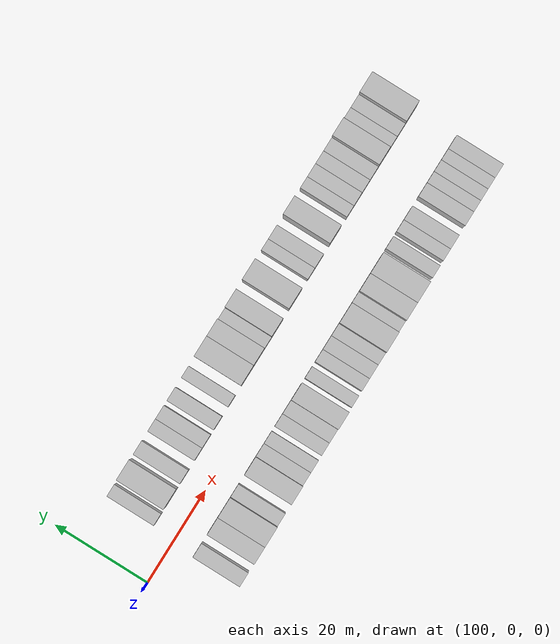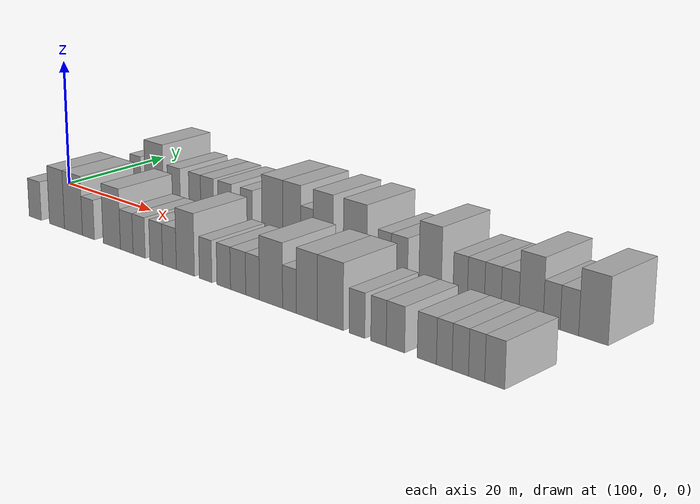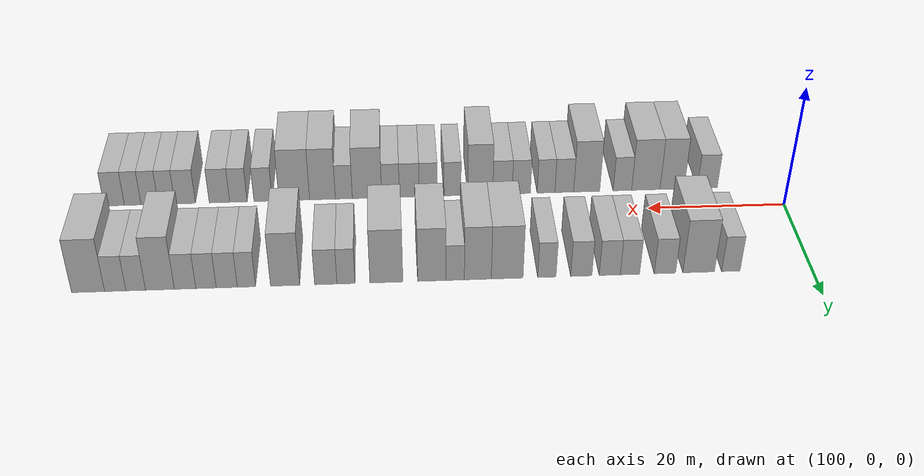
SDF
<sdf version="1.6">
 <world name="default">
  <model name="building_26">
   <static>1</static>
   <pose>111.1577 9.5000 0 0.000000 0.000000 1.570796</pose>
   <link name="link">
    <pose>0 0 3.00 0 0 0</pose>
    <collision name="collision"><geometry><box><size>10.0000 2.5390 6.0000</size></box></geometry></collision>
    <visual name="visual">
     <cast_shadows>0</cast_shadows>
     <geometry><box><size>10.0000 2.5390 6.0000</size></box></geometry>
     <material>
      <script>
       <uri>model://HANNAS_wall/materials/scripts</uri>
       <uri>model://HANNAS_wall/materials/textures</uri>
       <name>vrc/HANNAS_wall</name>
      </script>
     </material>
    </visual>
   </link>
  </model>
  <model name="building_27">
   <static>1</static>
   <pose>115.5979 9.5000 0 0.000000 0.000000 1.570796</pose>
   <link name="link">
    <pose>0 0 4.50 0 0 0</pose>
    <collision name="collision"><geometry><box><size>10.0000 4.3414 9.0000</size></box></geometry></collision>
    <visual name="visual">
     <cast_shadows>0</cast_shadows>
     <geometry><box><size>10.0000 4.3414 9.0000</size></box></geometry>
     <material>
      <script>
       <uri>model://HANNAS_wall/materials/scripts</uri>
       <uri>model://HANNAS_wall/materials/textures</uri>
       <name>vrc/HANNAS_wall</name>
      </script>
     </material>
    </visual>
   </link>
  </model>
  <model name="building_28">
   <static>1</static>
   <pose>120.2355 9.5000 0 0.000000 0.000000 1.570796</pose>
   <link name="link">
    <pose>0 0 3.00 0 0 0</pose>
    <collision name="collision"><geometry><box><size>10.0000 2.9337 6.0000</size></box></geometry></collision>
    <visual name="visual">
     <cast_shadows>0</cast_shadows>
     <geometry><box><size>10.0000 2.9337 6.0000</size></box></geometry>
     <material>
      <script>
       <uri>model://HANNAS_wall/materials/scripts</uri>
       <uri>model://HANNAS_wall/materials/textures</uri>
       <name>vrc/HANNAS_wall</name>
      </script>
     </material>
    </visual>
   </link>
  </model>
  <model name="building_29">
   <static>1</static>
   <pose>125.0300 9.5000 0 0.000000 0.000000 1.570796</pose>
   <link name="link">
    <pose>0 0 3.00 0 0 0</pose>
    <collision name="collision"><geometry><box><size>10.0000 2.6554 6.0000</size></box></geometry></collision>
    <visual name="visual">
     <cast_shadows>0</cast_shadows>
     <geometry><box><size>10.0000 2.6554 6.0000</size></box></geometry>
     <material>
      <script>
       <uri>model://HANNAS_wall/materials/scripts</uri>
       <uri>model://HANNAS_wall/materials/textures</uri>
       <name>vrc/HANNAS_wall</name>
      </script>
     </material>
    </visual>
   </link>
  </model>
  <model name="building_30">
   <static>1</static>
   <pose>127.7950 9.5000 0 0.000000 0.000000 1.570796</pose>
   <link name="link">
    <pose>0 0 3.00 0 0 0</pose>
    <collision name="collision"><geometry><box><size>10.0000 2.8746 6.0000</size></box></geometry></collision>
    <visual name="visual">
     <cast_shadows>0</cast_shadows>
     <geometry><box><size>10.0000 2.8746 6.0000</size></box></geometry>
     <material>
      <script>
       <uri>model://HANNAS_wall/materials/scripts</uri>
       <uri>model://HANNAS_wall/materials/textures</uri>
       <name>vrc/HANNAS_wall</name>
      </script>
     </material>
    </visual>
   </link>
  </model>
  <model name="building_31">
   <static>1</static>
   <pose>131.6793 9.5000 0 0.000000 0.000000 1.570796</pose>
   <link name="link">
    <pose>0 0 3.00 0 0 0</pose>
    <collision name="collision"><geometry><box><size>10.0000 2.8940 6.0000</size></box></geometry></collision>
    <visual name="visual">
     <cast_shadows>0</cast_shadows>
     <geometry><box><size>10.0000 2.8940 6.0000</size></box></geometry>
     <material>
      <script>
       <uri>model://HANNAS_wall/materials/scripts</uri>
       <uri>model://HANNAS_wall/materials/textures</uri>
       <name>vrc/HANNAS_wall</name>
      </script>
     </material>
    </visual>
   </link>
  </model>
  <model name="building_32">
   <static>1</static>
   <pose>136.3744 9.5000 0 0.000000 0.000000 1.570796</pose>
   <link name="link">
    <pose>0 0 3.00 0 0 0</pose>
    <collision name="collision"><geometry><box><size>10.0000 2.4963 6.0000</size></box></geometry></collision>
    <visual name="visual">
     <cast_shadows>0</cast_shadows>
     <geometry><box><size>10.0000 2.4963 6.0000</size></box></geometry>
     <material>
      <script>
       <uri>model://HANNAS_wall/materials/scripts</uri>
       <uri>model://HANNAS_wall/materials/textures</uri>
       <name>vrc/HANNAS_wall</name>
      </script>
     </material>
    </visual>
   </link>
  </model>
  <model name="building_33">
   <static>1</static>
   <pose>141.7789 9.5000 0 0.000000 0.000000 1.570796</pose>
   <link name="link">
    <pose>0 0 4.50 0 0 0</pose>
    <collision name="collision"><geometry><box><size>10.0000 4.3128 9.0000</size></box></geometry></collision>
    <visual name="visual">
     <cast_shadows>0</cast_shadows>
     <geometry><box><size>10.0000 4.3128 9.0000</size></box></geometry>
     <material>
      <script>
       <uri>model://HANNAS_wall/materials/scripts</uri>
       <uri>model://HANNAS_wall/materials/textures</uri>
       <name>vrc/HANNAS_wall</name>
      </script>
     </material>
    </visual>
   </link>
  </model>
  <model name="building_34">
   <static>1</static>
   <pose>145.7628 9.5000 0 0.000000 0.000000 1.570796</pose>
   <link name="link">
    <pose>0 0 4.50 0 0 0</pose>
    <collision name="collision"><geometry><box><size>10.0000 3.6548 9.0000</size></box></geometry></collision>
    <visual name="visual">
     <cast_shadows>0</cast_shadows>
     <geometry><box><size>10.0000 3.6548 9.0000</size></box></geometry>
     <material>
      <script>
       <uri>model://HANNAS_wall/materials/scripts</uri>
       <uri>model://HANNAS_wall/materials/textures</uri>
       <name>vrc/HANNAS_wall</name>
      </script>
     </material>
    </visual>
   </link>
  </model>
  <model name="building_35">
   <static>1</static>
   <pose>148.8193 9.5000 0 0.000000 0.000000 1.570796</pose>
   <link name="link">
    <pose>0 0 3.00 0 0 0</pose>
    <collision name="collision"><geometry><box><size>10.0000 2.4582 6.0000</size></box></geometry></collision>
    <visual name="visual">
     <cast_shadows>0</cast_shadows>
     <geometry><box><size>10.0000 2.4582 6.0000</size></box></geometry>
     <material>
      <script>
       <uri>model://HANNAS_wall/materials/scripts</uri>
       <uri>model://HANNAS_wall/materials/textures</uri>
       <name>vrc/HANNAS_wall</name>
      </script>
     </material>
    </visual>
   </link>
  </model>
  <model name="building_36">
   <static>1</static>
   <pose>151.9762 9.5000 0 0.000000 0.000000 1.570796</pose>
   <link name="link">
    <pose>0 0 4.50 0 0 0</pose>
    <collision name="collision"><geometry><box><size>10.0000 3.8558 9.0000</size></box></geometry></collision>
    <visual name="visual">
     <cast_shadows>0</cast_shadows>
     <geometry><box><size>10.0000 3.8558 9.0000</size></box></geometry>
     <material>
      <script>
       <uri>model://HANNAS_wall/materials/scripts</uri>
       <uri>model://HANNAS_wall/materials/textures</uri>
       <name>vrc/HANNAS_wall</name>
      </script>
     </material>
    </visual>
   </link>
  </model>
  <model name="building_37">
   <static>1</static>
   <pose>158.1260 9.5000 0 0.000000 0.000000 1.570796</pose>
   <link name="link">
    <pose>0 0 4.50 0 0 0</pose>
    <collision name="collision"><geometry><box><size>10.0000 4.4436 9.0000</size></box></geometry></collision>
    <visual name="visual">
     <cast_shadows>0</cast_shadows>
     <geometry><box><size>10.0000 4.4436 9.0000</size></box></geometry>
     <material>
      <script>
       <uri>model://HANNAS_wall/materials/scripts</uri>
       <uri>model://HANNAS_wall/materials/textures</uri>
       <name>vrc/HANNAS_wall</name>
      </script>
     </material>
    </visual>
   </link>
  </model>
  <model name="building_38">
   <static>1</static>
   <pose>163.5665 9.5000 0 0.000000 0.000000 1.570796</pose>
   <link name="link">
    <pose>0 0 3.00 0 0 0</pose>
    <collision name="collision"><geometry><box><size>10.0000 2.4374 6.0000</size></box></geometry></collision>
    <visual name="visual">
     <cast_shadows>0</cast_shadows>
     <geometry><box><size>10.0000 2.4374 6.0000</size></box></geometry>
     <material>
      <script>
       <uri>model://HANNAS_wall/materials/scripts</uri>
       <uri>model://HANNAS_wall/materials/textures</uri>
       <name>vrc/HANNAS_wall</name>
      </script>
     </material>
    </visual>
   </link>
  </model>
  <model name="building_39">
   <static>1</static>
   <pose>166.2821 9.5000 0 0.000000 0.000000 1.570796</pose>
   <link name="link">
    <pose>0 0 3.00 0 0 0</pose>
    <collision name="collision"><geometry><box><size>10.0000 2.9937 6.0000</size></box></geometry></collision>
    <visual name="visual">
     <cast_shadows>0</cast_shadows>
     <geometry><box><size>10.0000 2.9937 6.0000</size></box></geometry>
     <material>
      <script>
       <uri>model://HANNAS_wall/materials/scripts</uri>
       <uri>model://HANNAS_wall/materials/textures</uri>
       <name>vrc/HANNAS_wall</name>
      </script>
     </material>
    </visual>
   </link>
  </model>
  <model name="building_40">
   <static>1</static>
   <pose>171.7377 9.5000 0 0.000000 0.000000 1.570796</pose>
   <link name="link">
    <pose>0 0 4.50 0 0 0</pose>
    <collision name="collision"><geometry><box><size>10.0000 3.9174 9.0000</size></box></geometry></collision>
    <visual name="visual">
     <cast_shadows>0</cast_shadows>
     <geometry><box><size>10.0000 3.9174 9.0000</size></box></geometry>
     <material>
      <script>
       <uri>model://HANNAS_wall/materials/scripts</uri>
       <uri>model://HANNAS_wall/materials/textures</uri>
       <name>vrc/HANNAS_wall</name>
      </script>
     </material>
    </visual>
   </link>
  </model>
  <model name="building_41">
   <static>1</static>
   <pose>176.9133 9.5000 0 0.000000 0.000000 1.570796</pose>
   <link name="link">
    <pose>0 0 3.00 0 0 0</pose>
    <collision name="collision"><geometry><box><size>10.0000 2.4339 6.0000</size></box></geometry></collision>
    <visual name="visual">
     <cast_shadows>0</cast_shadows>
     <geometry><box><size>10.0000 2.4339 6.0000</size></box></geometry>
     <material>
      <script>
       <uri>model://HANNAS_wall/materials/scripts</uri>
       <uri>model://HANNAS_wall/materials/textures</uri>
       <name>vrc/HANNAS_wall</name>
      </script>
     </material>
    </visual>
   </link>
  </model>
  <model name="building_42">
   <static>1</static>
   <pose>179.5397 9.5000 0 0.000000 0.000000 1.570796</pose>
   <link name="link">
    <pose>0 0 3.00 0 0 0</pose>
    <collision name="collision"><geometry><box><size>10.0000 2.8189 6.0000</size></box></geometry></collision>
    <visual name="visual">
     <cast_shadows>0</cast_shadows>
     <geometry><box><size>10.0000 2.8189 6.0000</size></box></geometry>
     <material>
      <script>
       <uri>model://HANNAS_wall/materials/scripts</uri>
       <uri>model://HANNAS_wall/materials/textures</uri>
       <name>vrc/HANNAS_wall</name>
      </script>
     </material>
    </visual>
   </link>
  </model>
  <model name="building_43">
   <static>1</static>
   <pose>182.3090 9.5000 0 0.000000 0.000000 1.570796</pose>
   <link name="link">
    <pose>0 0 3.00 0 0 0</pose>
    <collision name="collision"><geometry><box><size>10.0000 2.7197 6.0000</size></box></geometry></collision>
    <visual name="visual">
     <cast_shadows>0</cast_shadows>
     <geometry><box><size>10.0000 2.7197 6.0000</size></box></geometry>
     <material>
      <script>
       <uri>model://HANNAS_wall/materials/scripts</uri>
       <uri>model://HANNAS_wall/materials/textures</uri>
       <name>vrc/HANNAS_wall</name>
      </script>
     </material>
    </visual>
   </link>
  </model>
  <model name="building_44">
   <static>1</static>
   <pose>185.0986 9.5000 0 0.000000 0.000000 1.570796</pose>
   <link name="link">
    <pose>0 0 3.00 0 0 0</pose>
    <collision name="collision"><geometry><box><size>10.0000 2.8594 6.0000</size></box></geometry></collision>
    <visual name="visual">
     <cast_shadows>0</cast_shadows>
     <geometry><box><size>10.0000 2.8594 6.0000</size></box></geometry>
     <material>
      <script>
       <uri>model://HANNAS_wall/materials/scripts</uri>
       <uri>model://HANNAS_wall/materials/textures</uri>
       <name>vrc/HANNAS_wall</name>
      </script>
     </material>
    </visual>
   </link>
  </model>
  <model name="building_45">
   <static>1</static>
   <pose>188.4521 9.5000 0 0.000000 0.000000 1.570796</pose>
   <link name="link">
    <pose>0 0 4.50 0 0 0</pose>
    <collision name="collision"><geometry><box><size>10.0000 3.8476 9.0000</size></box></geometry></collision>
    <visual name="visual">
     <cast_shadows>0</cast_shadows>
     <geometry><box><size>10.0000 3.8476 9.0000</size></box></geometry>
     <material>
      <script>
       <uri>model://HANNAS_wall/materials/scripts</uri>
       <uri>model://HANNAS_wall/materials/textures</uri>
       <name>vrc/HANNAS_wall</name>
      </script>
     </material>
    </visual>
   </link>
  </model>
  <model name="building_46">
   <static>1</static>
   <pose>191.6789 9.5000 0 0.000000 0.000000 1.570796</pose>
   <link name="link">
    <pose>0 0 3.00 0 0 0</pose>
    <collision name="collision"><geometry><box><size>10.0000 2.6060 6.0000</size></box></geometry></collision>
    <visual name="visual">
     <cast_shadows>0</cast_shadows>
     <geometry><box><size>10.0000 2.6060 6.0000</size></box></geometry>
     <material>
      <script>
       <uri>model://HANNAS_wall/materials/scripts</uri>
       <uri>model://HANNAS_wall/materials/textures</uri>
       <name>vrc/HANNAS_wall</name>
      </script>
     </material>
    </visual>
   </link>
  </model>
  <model name="building_47">
   <static>1</static>
   <pose>194.3903 9.5000 0 0.000000 0.000000 1.570796</pose>
   <link name="link">
    <pose>0 0 3.00 0 0 0</pose>
    <collision name="collision"><geometry><box><size>10.0000 2.8169 6.0000</size></box></geometry></collision>
    <visual name="visual">
     <cast_shadows>0</cast_shadows>
     <geometry><box><size>10.0000 2.8169 6.0000</size></box></geometry>
     <material>
      <script>
       <uri>model://HANNAS_wall/materials/scripts</uri>
       <uri>model://HANNAS_wall/materials/textures</uri>
       <name>vrc/HANNAS_wall</name>
      </script>
     </material>
    </visual>
   </link>
  </model>
  <model name="building_48">
   <static>1</static>
   <pose>197.9904 9.5000 0 0.000000 0.000000 1.570796</pose>
   <link name="link">
    <pose>0 0 4.50 0 0 0</pose>
    <collision name="collision"><geometry><box><size>10.0000 4.3834 9.0000</size></box></geometry></collision>
    <visual name="visual">
     <cast_shadows>0</cast_shadows>
     <geometry><box><size>10.0000 4.3834 9.0000</size></box></geometry>
     <material>
      <script>
       <uri>model://HANNAS_wall/materials/scripts</uri>
       <uri>model://HANNAS_wall/materials/textures</uri>
       <name>vrc/HANNAS_wall</name>
      </script>
     </material>
    </visual>
   </link>
  </model>
  <model name="building_73">
   <static>1</static>
   <pose>110.3047 -9.5000 0 0.000000 0.000000 1.570796</pose>
   <link name="link">
    <pose>0 0 3.00 0 0 0</pose>
    <collision name="collision"><geometry><box><size>10.0000 2.9689 6.0000</size></box></geometry></collision>
    <visual name="visual">
     <cast_shadows>0</cast_shadows>
     <geometry><box><size>10.0000 2.9689 6.0000</size></box></geometry>
     <material>
      <script>
       <uri>model://HANNAS_wall/materials/scripts</uri>
       <uri>model://HANNAS_wall/materials/textures</uri>
       <name>vrc/HANNAS_wall</name>
      </script>
     </material>
    </visual>
   </link>
  </model>
  <model name="building_74">
   <static>1</static>
   <pose>115.5953 -9.5000 0 0.000000 0.000000 1.570796</pose>
   <link name="link">
    <pose>0 0 4.50 0 0 0</pose>
    <collision name="collision"><geometry><box><size>10.0000 3.6124 9.0000</size></box></geometry></collision>
    <visual name="visual">
     <cast_shadows>0</cast_shadows>
     <geometry><box><size>10.0000 3.6124 9.0000</size></box></geometry>
     <material>
      <script>
       <uri>model://HANNAS_wall/materials/scripts</uri>
       <uri>model://HANNAS_wall/materials/textures</uri>
       <name>vrc/HANNAS_wall</name>
      </script>
     </material>
    </visual>
   </link>
  </model>
  <model name="building_75">
   <static>1</static>
   <pose>119.5136 -9.5000 0 0.000000 0.000000 1.570796</pose>
   <link name="link">
    <pose>0 0 4.50 0 0 0</pose>
    <collision name="collision"><geometry><box><size>10.0000 4.2241 9.0000</size></box></geometry></collision>
    <visual name="visual">
     <cast_shadows>0</cast_shadows>
     <geometry><box><size>10.0000 4.2241 9.0000</size></box></geometry>
     <material>
      <script>
       <uri>model://HANNAS_wall/materials/scripts</uri>
       <uri>model://HANNAS_wall/materials/textures</uri>
       <name>vrc/HANNAS_wall</name>
      </script>
     </material>
    </visual>
   </link>
  </model>
  <model name="building_76">
   <static>1</static>
   <pose>122.9993 -9.5000 0 0.000000 0.000000 1.570796</pose>
   <link name="link">
    <pose>0 0 3.00 0 0 0</pose>
    <collision name="collision"><geometry><box><size>10.0000 2.7473 6.0000</size></box></geometry></collision>
    <visual name="visual">
     <cast_shadows>0</cast_shadows>
     <geometry><box><size>10.0000 2.7473 6.0000</size></box></geometry>
     <material>
      <script>
       <uri>model://HANNAS_wall/materials/scripts</uri>
       <uri>model://HANNAS_wall/materials/textures</uri>
       <name>vrc/HANNAS_wall</name>
      </script>
     </material>
    </visual>
   </link>
  </model>
  <model name="building_77">
   <static>1</static>
   <pose>128.3097 -9.5000 0 0.000000 0.000000 1.570796</pose>
   <link name="link">
    <pose>0 0 4.50 0 0 0</pose>
    <collision name="collision"><geometry><box><size>10.0000 3.8735 9.0000</size></box></geometry></collision>
    <visual name="visual">
     <cast_shadows>0</cast_shadows>
     <geometry><box><size>10.0000 3.8735 9.0000</size></box></geometry>
     <material>
      <script>
       <uri>model://HANNAS_wall/materials/scripts</uri>
       <uri>model://HANNAS_wall/materials/textures</uri>
       <name>vrc/HANNAS_wall</name>
      </script>
     </material>
    </visual>
   </link>
  </model>
  <model name="building_78">
   <static>1</static>
   <pose>131.6368 -9.5000 0 0.000000 0.000000 1.570796</pose>
   <link name="link">
    <pose>0 0 3.00 0 0 0</pose>
    <collision name="collision"><geometry><box><size>10.0000 2.7807 6.0000</size></box></geometry></collision>
    <visual name="visual">
     <cast_shadows>0</cast_shadows>
     <geometry><box><size>10.0000 2.7807 6.0000</size></box></geometry>
     <material>
      <script>
       <uri>model://HANNAS_wall/materials/scripts</uri>
       <uri>model://HANNAS_wall/materials/textures</uri>
       <name>vrc/HANNAS_wall</name>
      </script>
     </material>
    </visual>
   </link>
  </model>
  <model name="building_79">
   <static>1</static>
   <pose>134.3416 -9.5000 0 0.000000 0.000000 1.570796</pose>
   <link name="link">
    <pose>0 0 3.00 0 0 0</pose>
    <collision name="collision"><geometry><box><size>10.0000 2.6289 6.0000</size></box></geometry></collision>
    <visual name="visual">
     <cast_shadows>0</cast_shadows>
     <geometry><box><size>10.0000 2.6289 6.0000</size></box></geometry>
     <material>
      <script>
       <uri>model://HANNAS_wall/materials/scripts</uri>
       <uri>model://HANNAS_wall/materials/textures</uri>
       <name>vrc/HANNAS_wall</name>
      </script>
     </material>
    </visual>
   </link>
  </model>
  <model name="building_80">
   <static>1</static>
   <pose>138.0000 -9.5000 0 0.000000 0.000000 1.570796</pose>
   <link name="link">
    <pose>0 0 3.00 0 0 0</pose>
    <collision name="collision"><geometry><box><size>10.0000 2.6880 6.0000</size></box></geometry></collision>
    <visual name="visual">
     <cast_shadows>0</cast_shadows>
     <geometry><box><size>10.0000 2.6880 6.0000</size></box></geometry>
     <material>
      <script>
       <uri>model://HANNAS_wall/materials/scripts</uri>
       <uri>model://HANNAS_wall/materials/textures</uri>
       <name>vrc/HANNAS_wall</name>
      </script>
     </material>
    </visual>
   </link>
  </model>
  <model name="building_81">
   <static>1</static>
   <pose>140.7874 -9.5000 0 0.000000 0.000000 1.570796</pose>
   <link name="link">
    <pose>0 0 3.00 0 0 0</pose>
    <collision name="collision"><geometry><box><size>10.0000 2.8869 6.0000</size></box></geometry></collision>
    <visual name="visual">
     <cast_shadows>0</cast_shadows>
     <geometry><box><size>10.0000 2.8869 6.0000</size></box></geometry>
     <material>
      <script>
       <uri>model://HANNAS_wall/materials/scripts</uri>
       <uri>model://HANNAS_wall/materials/textures</uri>
       <name>vrc/HANNAS_wall</name>
      </script>
     </material>
    </visual>
   </link>
  </model>
  <model name="building_82">
   <static>1</static>
   <pose>144.0778 -9.5000 0 0.000000 0.000000 1.570796</pose>
   <link name="link">
    <pose>0 0 4.50 0 0 0</pose>
    <collision name="collision"><geometry><box><size>10.0000 3.6939 9.0000</size></box></geometry></collision>
    <visual name="visual">
     <cast_shadows>0</cast_shadows>
     <geometry><box><size>10.0000 3.6939 9.0000</size></box></geometry>
     <material>
      <script>
       <uri>model://HANNAS_wall/materials/scripts</uri>
       <uri>model://HANNAS_wall/materials/textures</uri>
       <name>vrc/HANNAS_wall</name>
      </script>
     </material>
    </visual>
   </link>
  </model>
  <model name="building_83">
   <static>1</static>
   <pose>148.1732 -9.5000 0 0.000000 0.000000 1.570796</pose>
   <link name="link">
    <pose>0 0 3.00 0 0 0</pose>
    <collision name="collision"><geometry><box><size>10.0000 2.4969 6.0000</size></box></geometry></collision>
    <visual name="visual">
     <cast_shadows>0</cast_shadows>
     <geometry><box><size>10.0000 2.4969 6.0000</size></box></geometry>
     <material>
      <script>
       <uri>model://HANNAS_wall/materials/scripts</uri>
       <uri>model://HANNAS_wall/materials/textures</uri>
       <name>vrc/HANNAS_wall</name>
      </script>
     </material>
    </visual>
   </link>
  </model>
  <model name="building_84">
   <static>1</static>
   <pose>151.7496 -9.5000 0 0.000000 0.000000 1.570796</pose>
   <link name="link">
    <pose>0 0 3.00 0 0 0</pose>
    <collision name="collision"><geometry><box><size>10.0000 2.6559 6.0000</size></box></geometry></collision>
    <visual name="visual">
     <cast_shadows>0</cast_shadows>
     <geometry><box><size>10.0000 2.6559 6.0000</size></box></geometry>
     <material>
      <script>
       <uri>model://HANNAS_wall/materials/scripts</uri>
       <uri>model://HANNAS_wall/materials/textures</uri>
       <name>vrc/HANNAS_wall</name>
      </script>
     </material>
    </visual>
   </link>
  </model>
  <model name="building_85">
   <static>1</static>
   <pose>154.5378 -9.5000 0 0.000000 0.000000 1.570796</pose>
   <link name="link">
    <pose>0 0 3.00 0 0 0</pose>
    <collision name="collision"><geometry><box><size>10.0000 2.9203 6.0000</size></box></geometry></collision>
    <visual name="visual">
     <cast_shadows>0</cast_shadows>
     <geometry><box><size>10.0000 2.9203 6.0000</size></box></geometry>
     <material>
      <script>
       <uri>model://HANNAS_wall/materials/scripts</uri>
       <uri>model://HANNAS_wall/materials/textures</uri>
       <name>vrc/HANNAS_wall</name>
      </script>
     </material>
    </visual>
   </link>
  </model>
  <model name="building_86">
   <static>1</static>
   <pose>157.2921 -9.5000 0 0.000000 0.000000 1.570796</pose>
   <link name="link">
    <pose>0 0 3.00 0 0 0</pose>
    <collision name="collision"><geometry><box><size>10.0000 2.5883 6.0000</size></box></geometry></collision>
    <visual name="visual">
     <cast_shadows>0</cast_shadows>
     <geometry><box><size>10.0000 2.5883 6.0000</size></box></geometry>
     <material>
      <script>
       <uri>model://HANNAS_wall/materials/scripts</uri>
       <uri>model://HANNAS_wall/materials/textures</uri>
       <name>vrc/HANNAS_wall</name>
      </script>
     </material>
    </visual>
   </link>
  </model>
  <model name="building_87">
   <static>1</static>
   <pose>160.7341 -9.5000 0 0.000000 0.000000 1.570796</pose>
   <link name="link">
    <pose>0 0 4.50 0 0 0</pose>
    <collision name="collision"><geometry><box><size>10.0000 4.2957 9.0000</size></box></geometry></collision>
    <visual name="visual">
     <cast_shadows>0</cast_shadows>
     <geometry><box><size>10.0000 4.2957 9.0000</size></box></geometry>
     <material>
      <script>
       <uri>model://HANNAS_wall/materials/scripts</uri>
       <uri>model://HANNAS_wall/materials/textures</uri>
       <name>vrc/HANNAS_wall</name>
      </script>
     </material>
    </visual>
   </link>
  </model>
  <model name="building_88">
   <static>1</static>
   <pose>164.1247 -9.5000 0 0.000000 0.000000 1.570796</pose>
   <link name="link">
    <pose>0 0 3.00 0 0 0</pose>
    <collision name="collision"><geometry><box><size>10.0000 2.4854 6.0000</size></box></geometry></collision>
    <visual name="visual">
     <cast_shadows>0</cast_shadows>
     <geometry><box><size>10.0000 2.4854 6.0000</size></box></geometry>
     <material>
      <script>
       <uri>model://HANNAS_wall/materials/scripts</uri>
       <uri>model://HANNAS_wall/materials/textures</uri>
       <name>vrc/HANNAS_wall</name>
      </script>
     </material>
    </visual>
   </link>
  </model>
  <model name="building_89">
   <static>1</static>
   <pose>167.2465 -9.5000 0 0.000000 0.000000 1.570796</pose>
   <link name="link">
    <pose>0 0 4.50 0 0 0</pose>
    <collision name="collision"><geometry><box><size>10.0000 3.7583 9.0000</size></box></geometry></collision>
    <visual name="visual">
     <cast_shadows>0</cast_shadows>
     <geometry><box><size>10.0000 3.7583 9.0000</size></box></geometry>
     <material>
      <script>
       <uri>model://HANNAS_wall/materials/scripts</uri>
       <uri>model://HANNAS_wall/materials/textures</uri>
       <name>vrc/HANNAS_wall</name>
      </script>
     </material>
    </visual>
   </link>
  </model>
  <model name="building_90">
   <static>1</static>
   <pose>171.3587 -9.5000 0 0.000000 0.000000 1.570796</pose>
   <link name="link">
    <pose>0 0 4.50 0 0 0</pose>
    <collision name="collision"><geometry><box><size>10.0000 4.4661 9.0000</size></box></geometry></collision>
    <visual name="visual">
     <cast_shadows>0</cast_shadows>
     <geometry><box><size>10.0000 4.4661 9.0000</size></box></geometry>
     <material>
      <script>
       <uri>model://HANNAS_wall/materials/scripts</uri>
       <uri>model://HANNAS_wall/materials/textures</uri>
       <name>vrc/HANNAS_wall</name>
      </script>
     </material>
    </visual>
   </link>
  </model>
  <model name="building_91">
   <static>1</static>
   <pose>175.9186 -9.5000 0 0.000000 0.000000 1.570796</pose>
   <link name="link">
    <pose>0 0 3.00 0 0 0</pose>
    <collision name="collision"><geometry><box><size>10.0000 2.6538 6.0000</size></box></geometry></collision>
    <visual name="visual">
     <cast_shadows>0</cast_shadows>
     <geometry><box><size>10.0000 2.6538 6.0000</size></box></geometry>
     <material>
      <script>
       <uri>model://HANNAS_wall/materials/scripts</uri>
       <uri>model://HANNAS_wall/materials/textures</uri>
       <name>vrc/HANNAS_wall</name>
      </script>
     </material>
    </visual>
   </link>
  </model>
  <model name="building_92">
   <static>1</static>
   <pose>179.5153 -9.5000 0 0.000000 0.000000 1.570796</pose>
   <link name="link">
    <pose>0 0 3.00 0 0 0</pose>
    <collision name="collision"><geometry><box><size>10.0000 2.5396 6.0000</size></box></geometry></collision>
    <visual name="visual">
     <cast_shadows>0</cast_shadows>
     <geometry><box><size>10.0000 2.5396 6.0000</size></box></geometry>
     <material>
      <script>
       <uri>model://HANNAS_wall/materials/scripts</uri>
       <uri>model://HANNAS_wall/materials/textures</uri>
       <name>vrc/HANNAS_wall</name>
      </script>
     </material>
    </visual>
   </link>
  </model>
  <model name="building_93">
   <static>1</static>
   <pose>182.2693 -9.5000 0 0.000000 0.000000 1.570796</pose>
   <link name="link">
    <pose>0 0 3.00 0 0 0</pose>
    <collision name="collision"><geometry><box><size>10.0000 2.9684 6.0000</size></box></geometry></collision>
    <visual name="visual">
     <cast_shadows>0</cast_shadows>
     <geometry><box><size>10.0000 2.9684 6.0000</size></box></geometry>
     <material>
      <script>
       <uri>model://HANNAS_wall/materials/scripts</uri>
       <uri>model://HANNAS_wall/materials/textures</uri>
       <name>vrc/HANNAS_wall</name>
      </script>
     </material>
    </visual>
   </link>
  </model>
  <model name="building_94">
   <static>1</static>
   <pose>187.2509 -9.5000 0 0.000000 0.000000 1.570796</pose>
   <link name="link">
    <pose>0 0 3.00 0 0 0</pose>
    <collision name="collision"><geometry><box><size>10.0000 2.9947 6.0000</size></box></geometry></collision>
    <visual name="visual">
     <cast_shadows>0</cast_shadows>
     <geometry><box><size>10.0000 2.9947 6.0000</size></box></geometry>
     <material>
      <script>
       <uri>model://HANNAS_wall/materials/scripts</uri>
       <uri>model://HANNAS_wall/materials/textures</uri>
       <name>vrc/HANNAS_wall</name>
      </script>
     </material>
    </visual>
   </link>
  </model>
  <model name="building_95">
   <static>1</static>
   <pose>189.9489 -9.5000 0 0.000000 0.000000 1.570796</pose>
   <link name="link">
    <pose>0 0 3.00 0 0 0</pose>
    <collision name="collision"><geometry><box><size>10.0000 2.4014 6.0000</size></box></geometry></collision>
    <visual name="visual">
     <cast_shadows>0</cast_shadows>
     <geometry><box><size>10.0000 2.4014 6.0000</size></box></geometry>
     <material>
      <script>
       <uri>model://HANNAS_wall/materials/scripts</uri>
       <uri>model://HANNAS_wall/materials/textures</uri>
       <name>vrc/HANNAS_wall</name>
      </script>
     </material>
    </visual>
   </link>
  </model>
  <model name="building_96">
   <static>1</static>
   <pose>192.3887 -9.5000 0 0.000000 0.000000 1.570796</pose>
   <link name="link">
    <pose>0 0 3.00 0 0 0</pose>
    <collision name="collision"><geometry><box><size>10.0000 2.4781 6.0000</size></box></geometry></collision>
    <visual name="visual">
     <cast_shadows>0</cast_shadows>
     <geometry><box><size>10.0000 2.4781 6.0000</size></box></geometry>
     <material>
      <script>
       <uri>model://HANNAS_wall/materials/scripts</uri>
       <uri>model://HANNAS_wall/materials/textures</uri>
       <name>vrc/HANNAS_wall</name>
      </script>
     </material>
    </visual>
   </link>
  </model>
  <model name="building_97">
   <static>1</static>
   <pose>194.8317 -9.5000 0 0.000000 0.000000 1.570796</pose>
   <link name="link">
    <pose>0 0 3.00 0 0 0</pose>
    <collision name="collision"><geometry><box><size>10.0000 2.4078 6.0000</size></box></geometry></collision>
    <visual name="visual">
     <cast_shadows>0</cast_shadows>
     <geometry><box><size>10.0000 2.4078 6.0000</size></box></geometry>
     <material>
      <script>
       <uri>model://HANNAS_wall/materials/scripts</uri>
       <uri>model://HANNAS_wall/materials/textures</uri>
       <name>vrc/HANNAS_wall</name>
      </script>
     </material>
    </visual>
   </link>
  </model>
  <model name="building_98">
   <static>1</static>
   <pose>197.4958 -9.5000 0 0.000000 0.000000 1.570796</pose>
   <link name="link">
    <pose>0 0 3.00 0 0 0</pose>
    <collision name="collision"><geometry><box><size>10.0000 2.9204 6.0000</size></box></geometry></collision>
    <visual name="visual">
     <cast_shadows>0</cast_shadows>
     <geometry><box><size>10.0000 2.9204 6.0000</size></box></geometry>
     <material>
      <script>
       <uri>model://HANNAS_wall/materials/scripts</uri>
       <uri>model://HANNAS_wall/materials/textures</uri>
       <name>vrc/HANNAS_wall</name>
      </script>
     </material>
    </visual>
   </link>
  </model>
 </world>
</sdf>
